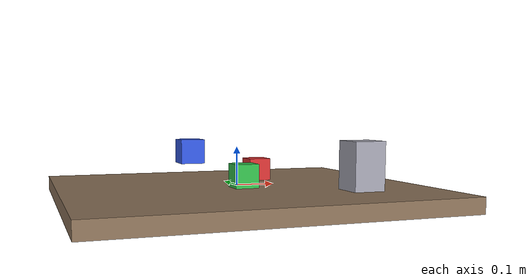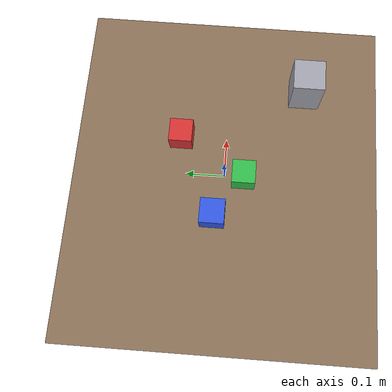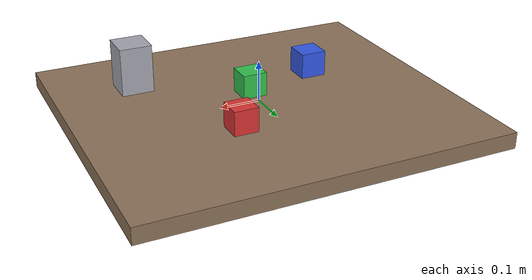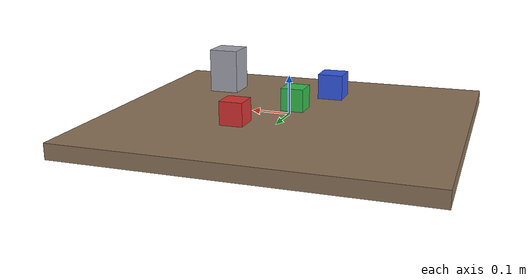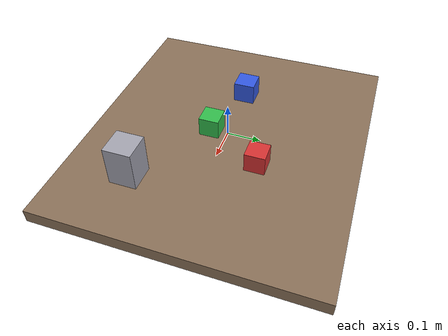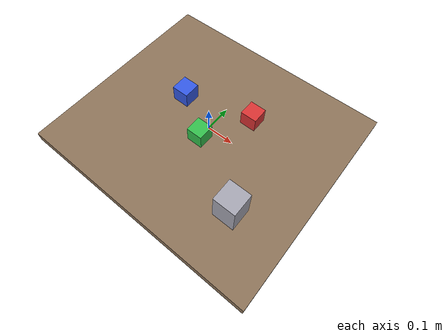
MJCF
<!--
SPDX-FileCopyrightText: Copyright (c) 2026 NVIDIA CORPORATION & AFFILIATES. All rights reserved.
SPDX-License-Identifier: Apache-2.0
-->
<?xml version="1.0" encoding="utf-8"?>
<mujoco model="mujoco_xr_tabletop">
  <option timestep="0.002"/>

  <worldbody>
    <!-- Table: top face at z = 0, body extends downward. -->
    <body name="table" pos="0 0 -0.02">
      <geom name="table_top" type="box" size="0.45 0.40 0.02" rgba="0.55 0.45 0.35 1"/>
    </body>

    <!-- Three free-falling blocks, resting on the table top. -->
    <body name="block_red" pos="0.10 0.12 0.03">
      <freejoint/>
      <geom name="block_red_geom" type="box" size="0.03 0.03 0.03" rgba="0.85 0.20 0.20 1" mass="0.2"/>
    </body>
    <body name="block_green" pos="0.00 -0.05 0.03">
      <freejoint/>
      <geom name="block_green_geom" type="box" size="0.03 0.03 0.03" rgba="0.20 0.75 0.30 1" mass="0.2"/>
    </body>
    <body name="block_blue" pos="-0.12 0.02 0.09">
      <freejoint/>
      <geom name="block_blue_geom" type="box" size="0.03 0.03 0.03" rgba="0.20 0.35 0.90 1" mass="0.2"/>
    </body>

    <!-- A static pedestal so there is something with a fixed pose to judge
         head-tracking stability against. -->
    <body name="pedestal" pos="0.25 -0.20 0.06">
      <geom name="pedestal_geom" type="box" size="0.04 0.04 0.06" rgba="0.65 0.65 0.70 1"/>
    </body>
  </worldbody>
</mujoco>
